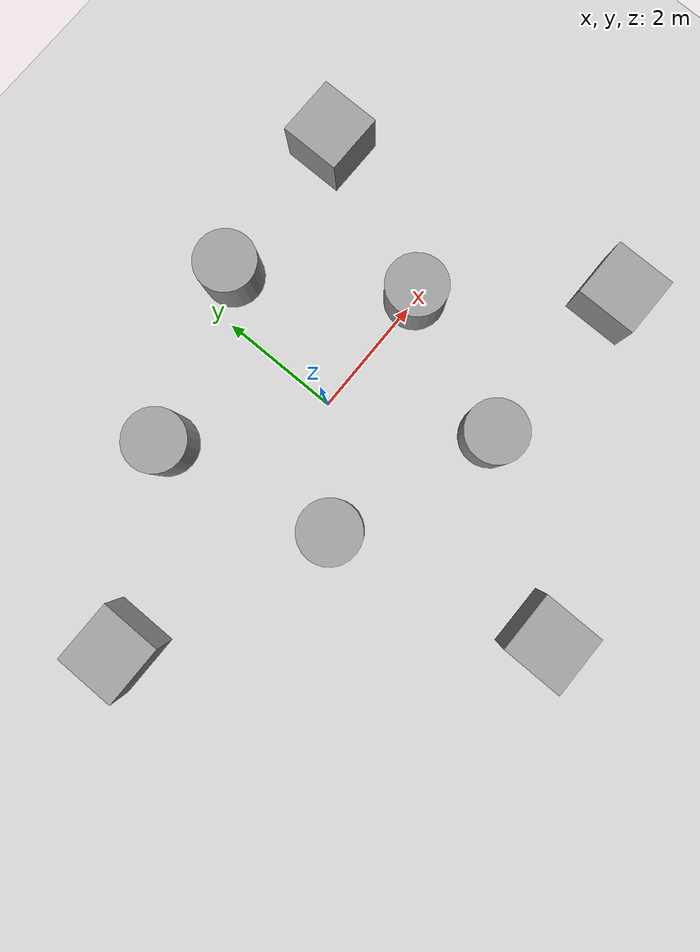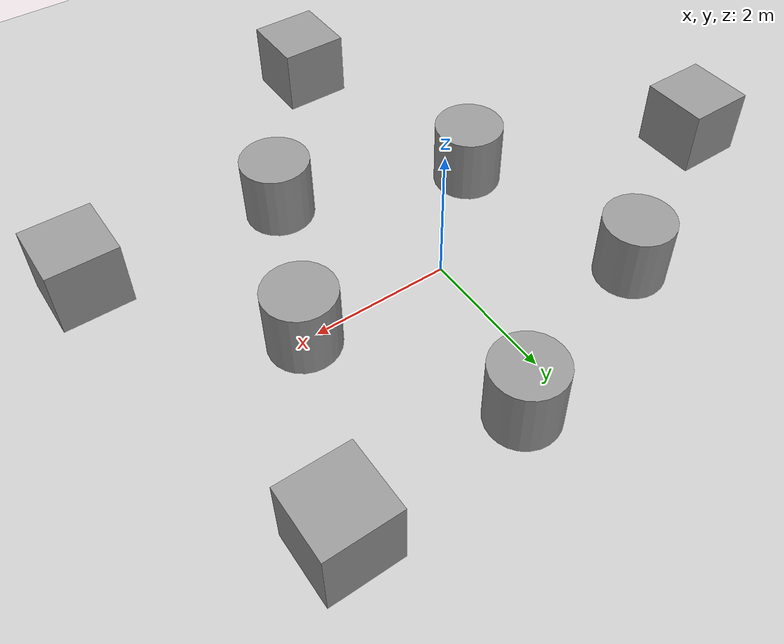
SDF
<sdf version="1.7">
 <world name="default">
  <light name="sun" type="directional">
   <pose>0 0 10 0 -0 0</pose>
   <diffuse>0.8 0.8 0.8 1</diffuse>
   <specular>0.2 0.2 0.2 1</specular>
   <attenuation>
    <range>1000</range>
    <constant>0.9</constant>
    <linear>0.01</linear>
    <quadratic>0.001</quadratic>
   </attenuation>
   <direction>-0.5 0.1 -0.9</direction>
   <spot><inner_angle>0</inner_angle><outer_angle>0</outer_angle><falloff>0</falloff></spot>
  </light>
  <model name="ground_plane">
   <static>1</static>
   <link name="link">
    <collision name="collision">
     <geometry><plane><normal>0 0 1</normal><size>100 100</size></plane></geometry>
     <surface>
      <contact><collide_bitmask>65535</collide_bitmask></contact>
      <friction><ode><mu>100</mu><mu2>50</mu2></ode></friction>
     </surface>
    </collision>
    <visual name="visual">
     <cast_shadows>0</cast_shadows>
     <geometry><plane><normal>0 0 1</normal><size>100 100</size></plane></geometry>
     <material>
      <script><uri>file://media/materials/scripts/gazebo.material</uri><name>Gazebo/Grey</name></script>
     </material>
    </visual>
   </link>
  </model>
  <gravity>0 0 -9.8</gravity>
  <magnetic_field>6e-06 2.3e-05 -4.2e-05</magnetic_field>
  <atmosphere type="adiabatic"/>
  <physics type="ode">
   <max_step_size>0.001</max_step_size>
   <real_time_factor>1</real_time_factor>
   <real_time_update_rate>1000</real_time_update_rate>
  </physics>
  <scene><ambient>0.4 0.4 0.4 1</ambient><background>0.7 0.7 0.7 1</background><shadows>1</shadows></scene>
  <audio><device>default</device></audio>
  <spherical_coordinates>
   <surface_model>EARTH_WGS84</surface_model>
   <latitude_deg>0</latitude_deg>
   <longitude_deg>0</longitude_deg>
   <elevation>0</elevation>
   <heading_deg>0</heading_deg>
  </spherical_coordinates>
  <model name="unit_cylinder">
   <pose>2.19366 0.023042 0.499998 3e-06 4e-06 -0</pose>
   <link name="link">
    <inertial>
     <mass>1</mass>
     <inertia><ixx>0.145833</ixx><ixy>0</ixy><ixz>0</ixz><iyy>0.145833</iyy><iyz>0</iyz><izz>0.125</izz></inertia>
    </inertial>
    <collision name="collision">
     <geometry><cylinder><radius>0.5</radius><length>1</length></cylinder></geometry>
    </collision>
    <visual name="visual">
     <geometry><cylinder><radius>0.5</radius><length>1</length></cylinder></geometry>
     <material>
      <script><name>Gazebo/Grey</name><uri>file://media/materials/scripts/gazebo.material</uri></script>
     </material>
    </visual>
   </link>
  </model>
  <model name="unit_cylinder_0">
   <pose>0.631247 2.49521 0.499998 3e-06 4e-06 -0</pose>
   <link name="link">
    <inertial>
     <mass>1</mass>
     <inertia><ixx>0.145833</ixx><ixy>0</ixy><ixz>0</ixz><iyy>0.145833</iyy><iyz>0</iyz><izz>0.125</izz></inertia>
    </inertial>
    <collision name="collision">
     <geometry><cylinder><radius>0.5</radius><length>1</length></cylinder></geometry>
    </collision>
    <visual name="visual">
     <geometry><cylinder><radius>0.5</radius><length>1</length></cylinder></geometry>
     <material>
      <script><name>Gazebo/Grey</name><uri>file://media/materials/scripts/gazebo.material</uri></script>
     </material>
    </visual>
   </link>
  </model>
  <model name="unit_cylinder_1">
   <pose>1.23429 -2.28018 0.499998 3e-06 4e-06 -0</pose>
   <link name="link">
    <inertial>
     <mass>1</mass>
     <inertia><ixx>0.145833</ixx><ixy>0</ixy><ixz>0</ixz><iyy>0.145833</iyy><iyz>0</iyz><izz>0.125</izz></inertia>
    </inertial>
    <collision name="collision">
     <geometry><cylinder><radius>0.5</radius><length>1</length></cylinder></geometry>
    </collision>
    <visual name="visual">
     <geometry><cylinder><radius>0.5</radius><length>1</length></cylinder></geometry>
     <material>
      <script><name>Gazebo/Grey</name><uri>file://media/materials/scripts/gazebo.material</uri></script>
     </material>
    </visual>
   </link>
  </model>
  <model name="unit_cylinder_2">
   <pose>-2.08013 1.51676 0.499993 -3e-06 -3e-06 0</pose>
   <link name="link">
    <inertial>
     <mass>1</mass>
     <inertia><ixx>0.145833</ixx><ixy>0</ixy><ixz>0</ixz><iyy>0.145833</iyy><iyz>0</iyz><izz>0.125</izz></inertia>
    </inertial>
    <collision name="collision">
     <geometry><cylinder><radius>0.5</radius><length>1</length></cylinder></geometry>
    </collision>
    <visual name="visual">
     <geometry><cylinder><radius>0.5</radius><length>1</length></cylinder></geometry>
     <material>
      <script><name>Gazebo/Grey</name><uri>file://media/materials/scripts/gazebo.material</uri></script>
     </material>
    </visual>
   </link>
  </model>
  <model name="unit_cylinder_3">
   <pose>-1.45874 -1.32574 0.499997 3e-06 3e-06 0</pose>
   <link name="link">
    <inertial>
     <mass>1</mass>
     <inertia><ixx>0.145833</ixx><ixy>0</ixy><ixz>0</ixz><iyy>0.145833</iyy><iyz>0</iyz><izz>0.125</izz></inertia>
    </inertial>
    <collision name="collision">
     <geometry><cylinder><radius>0.5</radius><length>1</length></cylinder></geometry>
    </collision>
    <visual name="visual">
     <geometry><cylinder><radius>0.5</radius><length>1</length></cylinder></geometry>
     <material>
      <script><name>Gazebo/Grey</name><uri>file://media/materials/scripts/gazebo.material</uri></script>
     </material>
    </visual>
   </link>
  </model>
  <model name="unit_box">
   <pose>3.29346 2.6587 0.5 0 -0 0</pose>
   <link name="link">
    <inertial>
     <mass>1</mass>
     <inertia>
      <ixx>0.166667</ixx>
      <ixy>0</ixy>
      <ixz>0</ixz>
      <iyy>0.166667</iyy>
      <iyz>0</iyz>
      <izz>0.166667</izz>
     </inertia>
    </inertial>
    <collision name="collision"><geometry><box><size>1 1 1</size></box></geometry></collision>
    <visual name="visual">
     <geometry><box><size>1 1 1</size></box></geometry>
     <material>
      <script><name>Gazebo/Grey</name><uri>file://media/materials/scripts/gazebo.material</uri></script>
     </material>
    </visual>
   </link>
  </model>
  <model name="unit_box_0">
   <pose>4.16573 -2.41619 0.5 0 -0 0</pose>
   <link name="link">
    <inertial>
     <mass>1</mass>
     <inertia>
      <ixx>0.166667</ixx>
      <ixy>0</ixy>
      <ixz>0</ixz>
      <iyy>0.166667</iyy>
      <iyz>0</iyz>
      <izz>0.166667</izz>
     </inertia>
    </inertial>
    <collision name="collision"><geometry><box><size>1 1 1</size></box></geometry></collision>
    <visual name="visual">
     <geometry><box><size>1 1 1</size></box></geometry>
     <material>
      <script><name>Gazebo/Grey</name><uri>file://media/materials/scripts/gazebo.material</uri></script>
     </material>
    </visual>
   </link>
  </model>
  <model name="unit_box_1">
   <pose>-4.77937 0.004472 0.5 0 -0 0</pose>
   <link name="link">
    <inertial>
     <mass>1</mass>
     <inertia>
      <ixx>0.166667</ixx>
      <ixy>0</ixy>
      <ixz>0</ixz>
      <iyy>0.166667</iyy>
      <iyz>0</iyz>
      <izz>0.166667</izz>
     </inertia>
    </inertial>
    <collision name="collision"><geometry><box><size>1 1 1</size></box></geometry></collision>
    <visual name="visual">
     <geometry><box><size>1 1 1</size></box></geometry>
     <material>
      <script><name>Gazebo/Grey</name><uri>file://media/materials/scripts/gazebo.material</uri></script>
     </material>
    </visual>
   </link>
  </model>
  <model name="unit_box_2">
   <pose>-0.638672 -4.7919 0.5 0 -0 0</pose>
   <link name="link">
    <inertial>
     <mass>1</mass>
     <inertia>
      <ixx>0.166667</ixx>
      <ixy>0</ixy>
      <ixz>0</ixz>
      <iyy>0.166667</iyy>
      <iyz>0</iyz>
      <izz>0.166667</izz>
     </inertia>
    </inertial>
    <collision name="collision"><geometry><box><size>1 1 1</size></box></geometry></collision>
    <visual name="visual">
     <geometry><box><size>1 1 1</size></box></geometry>
     <material>
      <script><name>Gazebo/Grey</name><uri>file://media/materials/scripts/gazebo.material</uri></script>
     </material>
    </visual>
   </link>
  </model>
 </world>
</sdf>
